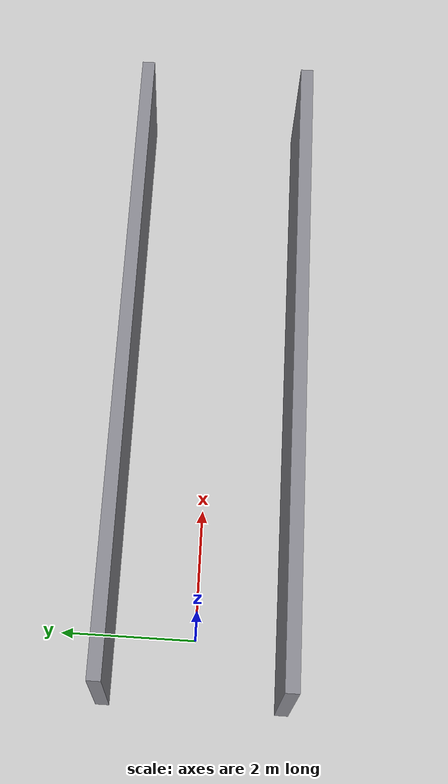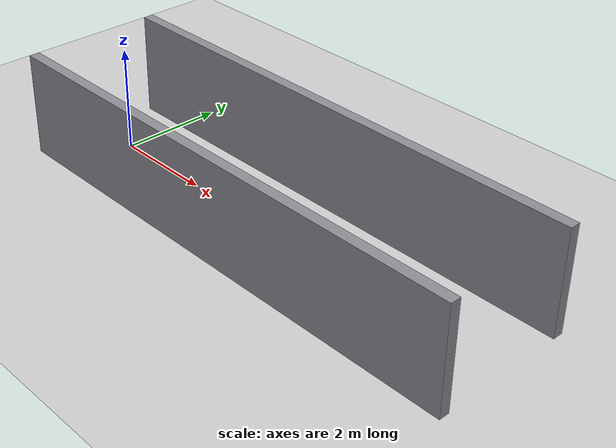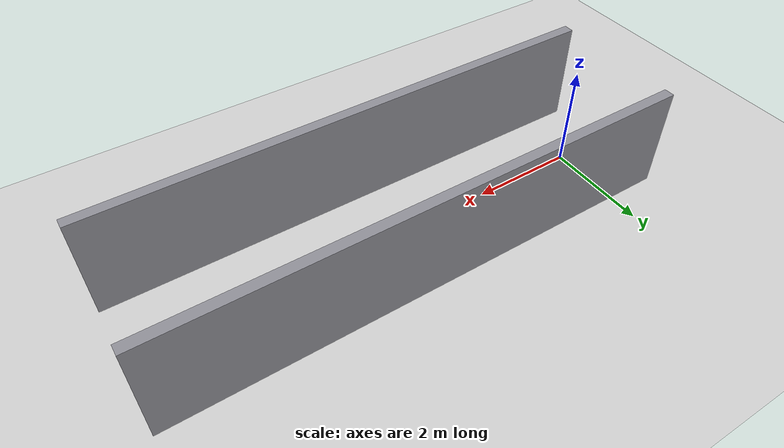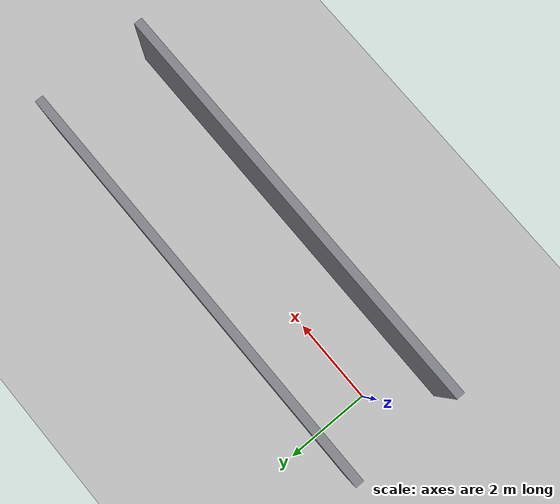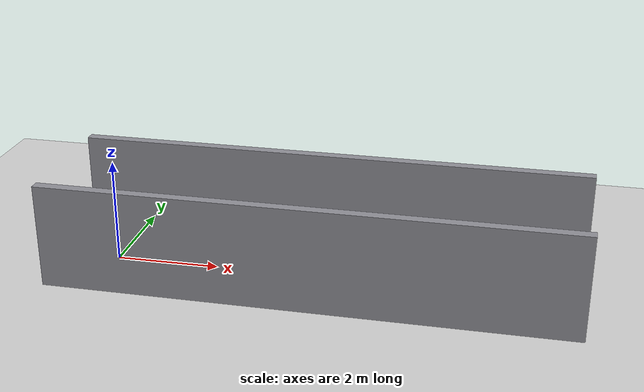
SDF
<?xml version="1.0" ?>
<sdf version="1.6">
  <world name="default">
    <physics type="ode"><max_step_size>0.01</max_step_size><real_time_factor>1</real_time_factor><real_time_update_rate>100</real_time_update_rate></physics>
    <gui><camera name="user_camera"><pose>4 -10 8 0 0.55 1.5707</pose></camera></gui>
    <light name="sun" type="directional"><pose>0 0 10 0 0 0</pose><diffuse>0.8 0.8 0.8 1</diffuse><specular>0.2 0.2 0.2 1</specular><direction>-0.3 0.2 -1</direction></light>
    <include><uri>model://ground_plane</uri></include>
    <model name="corridor_left">
      <static>true</static><pose>4 1.3 1 0 0 0</pose>
      <link name="wall"><collision name="collision"><geometry><box><size>10 0.2 2</size></box></geometry></collision><visual name="visual"><geometry><box><size>10 0.2 2</size></box></geometry><material><ambient>0.55 0.55 0.58 1</ambient><diffuse>0.55 0.55 0.58 1</diffuse></material></visual></link>
    </model>
    <model name="corridor_right">
      <static>true</static><pose>4 -1.3 1 0 0 0</pose>
      <link name="wall"><collision name="collision"><geometry><box><size>10 0.2 2</size></box></geometry></collision><visual name="visual"><geometry><box><size>10 0.2 2</size></box></geometry><material><ambient>0.55 0.55 0.58 1</ambient><diffuse>0.55 0.55 0.58 1</diffuse></material></visual></link>
    </model>
  </world>
</sdf>
